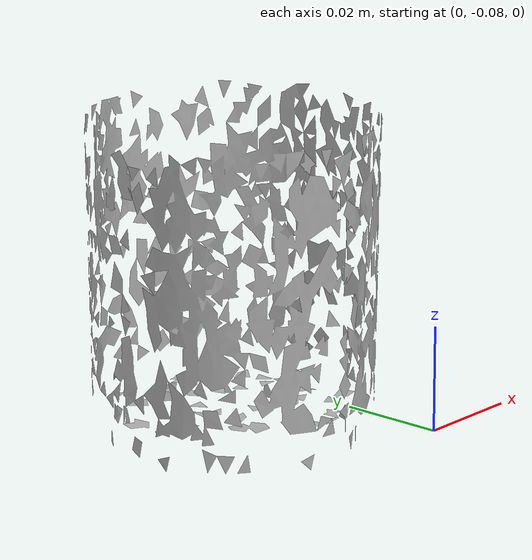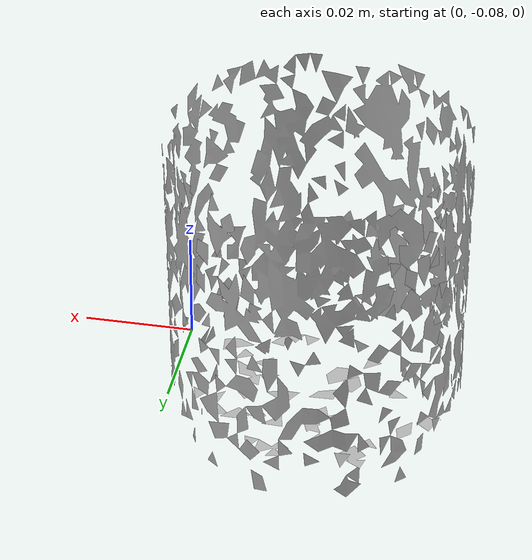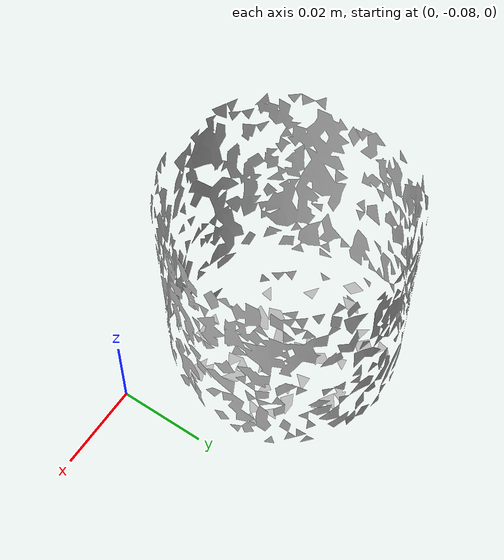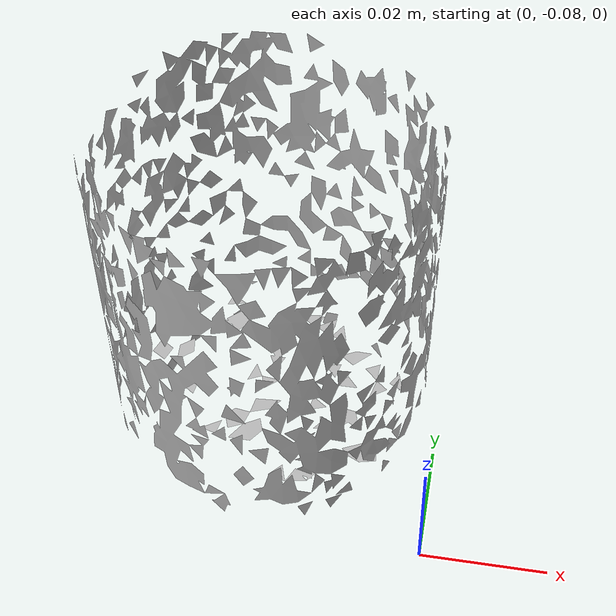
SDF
<?xml version="1.0" ?>
<sdf version="1.4">
  <model name='ycb_065-b_cups'>
    <link name='body'>
      <inertial>
        <mass>0.035</mass>
        <pose>-0.026747550226 -0.0536543135195 0.0299414194614 0 0 0</pose>
        <inertia>
          <ixx>2.23752972155e-05</ixx>
          <ixy>-1.56873154999e-07</ixy>
          <ixz>1.35957415073e-07</ixz>
          <iyy>2.17942266869e-05</iyy>
          <iyz>6.5139614805e-07</iyz>
          <izz>1.95705335745e-05</izz>
        </inertia>
      </inertial>
      <visual name='ycb_065-b_cups_visual'>
        <pose>0 0 0 0 0 0</pose>
        <geometry>
          <mesh>
            <uri>model://ycb_065-b_cups/meshes/textured.dae</uri>
          </mesh>
        </geometry>
      </visual>
      <collision name='ycb_065-b_cups_collision'>
        <pose>0 0 0 0 0 0</pose>
        <geometry>
          <mesh>
            <uri>model://ycb_065-b_cups/meshes/nontextured.stl</uri>
          </mesh>
        </geometry>
        <max_contacts>10</max_contacts>
      </collision>
    </link>
  </model>
</sdf>
